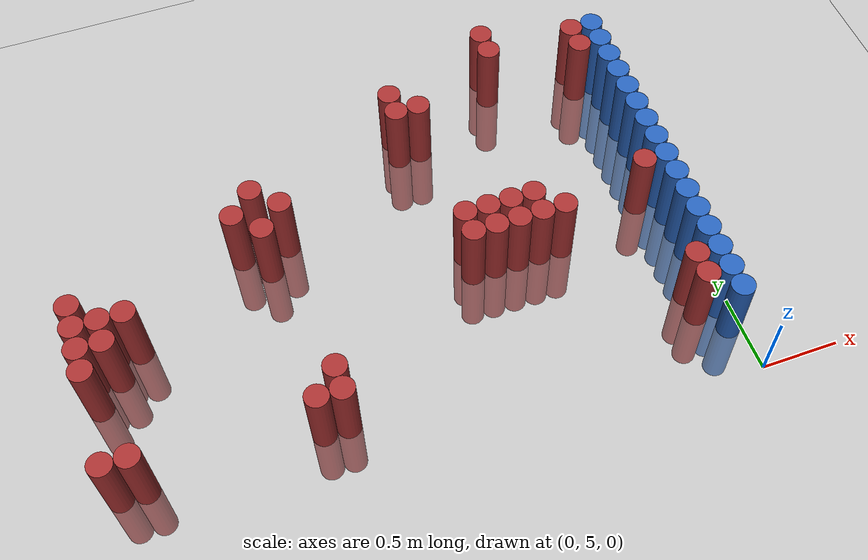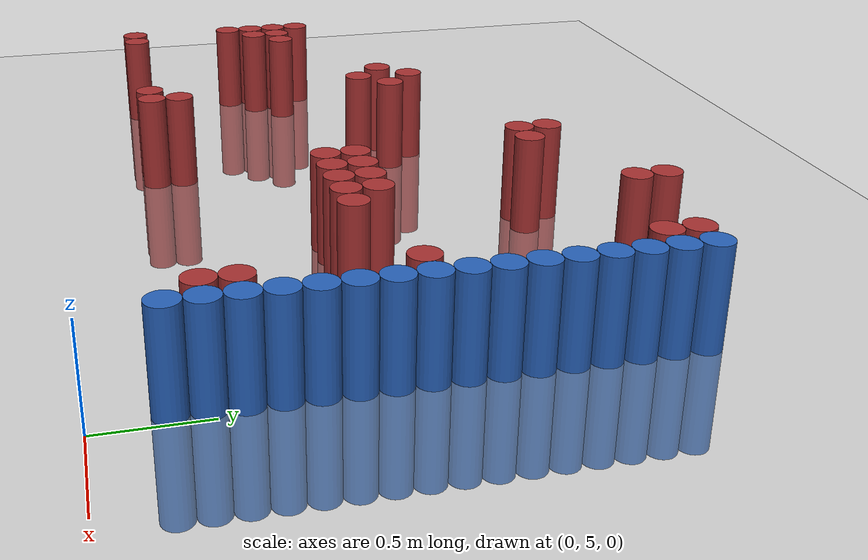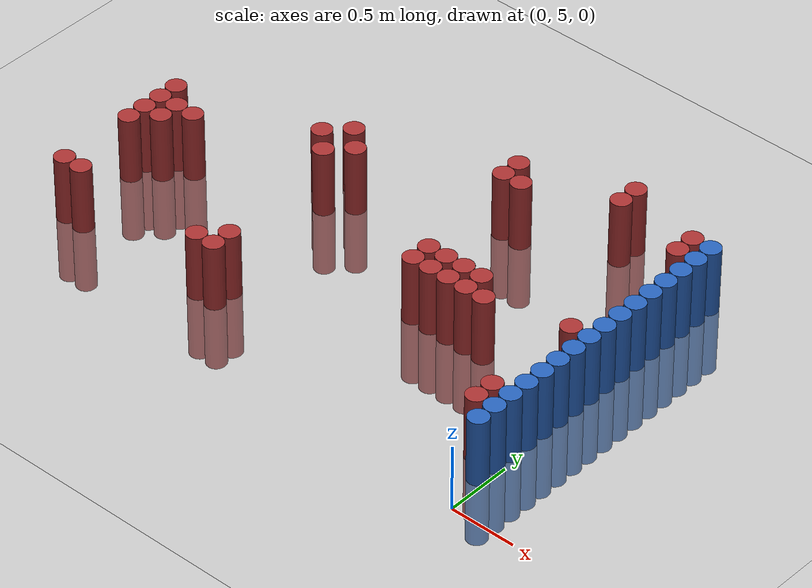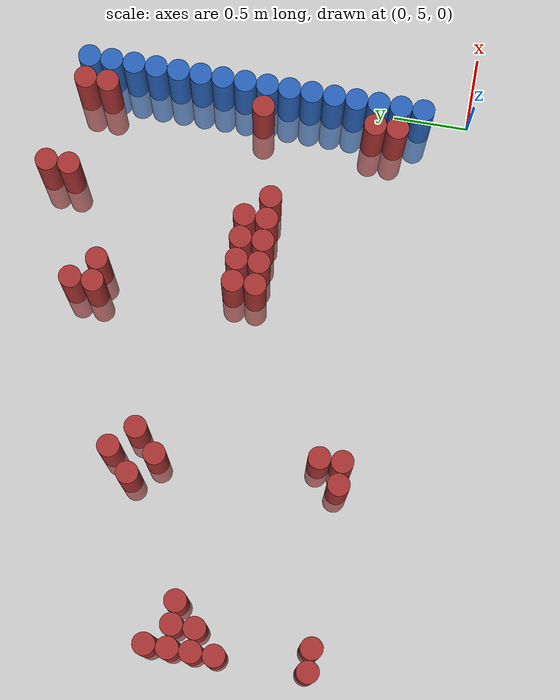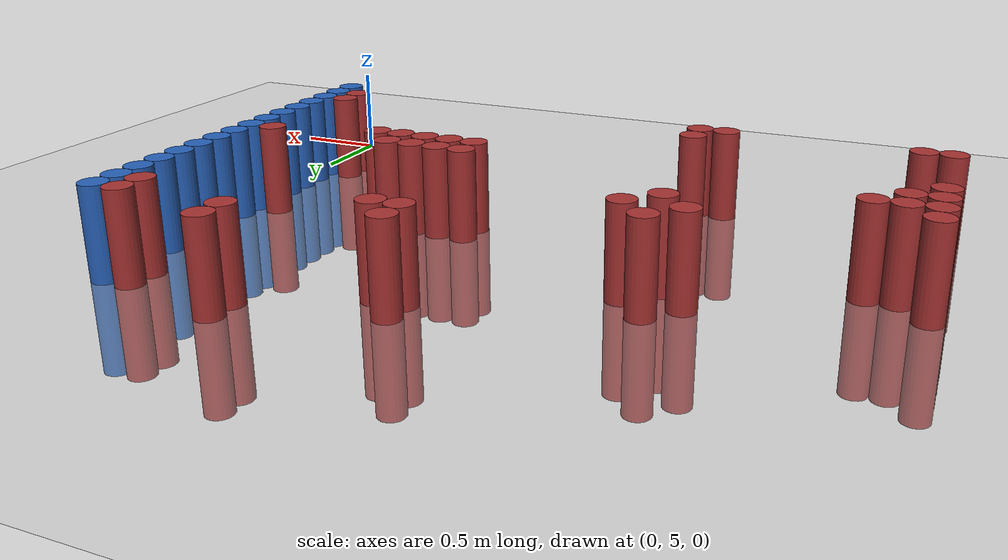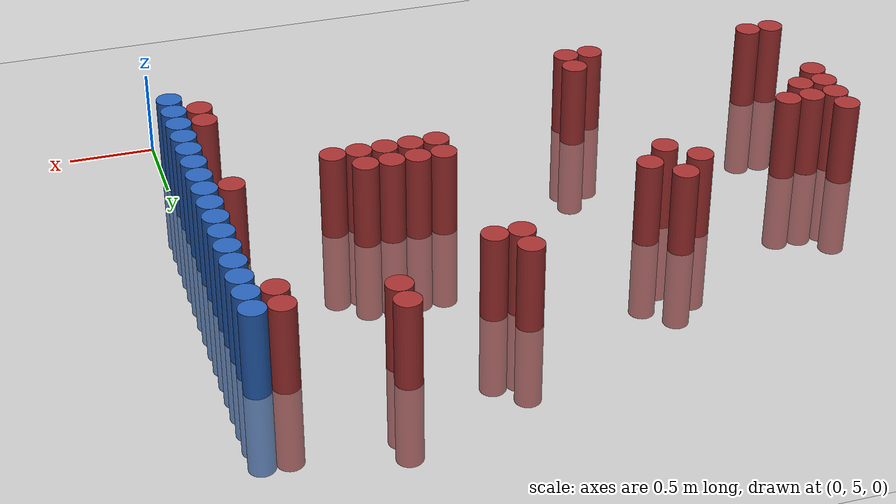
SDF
<sdf version="1.6">
 <world name="default">
  <model name="ground_plane">
   <static>1</static>
   <link name="link">
    <collision name="collision">
     <geometry><plane><normal>0 0 1</normal><size>100 100</size></plane></geometry>
     <surface><friction><ode><mu>100</mu><mu2>50</mu2></ode></friction></surface>
    </collision>
    <visual name="visual">
     <cast_shadows>0</cast_shadows>
     <geometry><plane><normal>0 0 1</normal><size>100 100</size></plane></geometry>
     <material>
      <script><uri>file://media/materials/scripts/gazebo.material</uri><name>Gazebo/Grey</name></script>
     </material>
    </visual>
   </link>
  </model>
  <model name="unit_cylinder_153">
   <static>1</static>
   <pose>-3.825000 5.475000 0.000000 0.000000 0.000000 0.000000</pose>
   <link name="link">
    <inertial>
     <mass>1</mass>
     <inertia><ixx>0.145833</ixx><ixy>0</ixy><ixz>0</ixz><iyy>0.145833</iyy><iyz>0</iyz><izz>0.125</izz></inertia>
    </inertial>
    <collision name="collision">
     <geometry><cylinder><radius>0.075000</radius><length>1</length></cylinder></geometry>
    </collision>
    <visual name="visual">
     <geometry><cylinder><radius>0.075000</radius><length>1</length></cylinder></geometry>
     <material>
      <ambient>0.648000 0.192000 0.192000 1</ambient>
      <diffuse>0.648000 0.192000 0.192000 1</diffuse>
     </material>
     <material>
      <script><name>Gazebo/Grey</name><uri>file://media/materials/scripts/gazebo.material</uri></script>
     </material>
    </visual>
   </link>
  </model>
  <model name="unit_cylinder_154">
   <static>1</static>
   <pose>-3.825000 6.075000 0.000000 0.000000 0.000000 0.000000</pose>
   <link name="link">
    <inertial>
     <mass>1</mass>
     <inertia><ixx>0.145833</ixx><ixy>0</ixy><ixz>0</ixz><iyy>0.145833</iyy><iyz>0</iyz><izz>0.125</izz></inertia>
    </inertial>
    <collision name="collision">
     <geometry><cylinder><radius>0.075000</radius><length>1</length></cylinder></geometry>
    </collision>
    <visual name="visual">
     <geometry><cylinder><radius>0.075000</radius><length>1</length></cylinder></geometry>
     <material>
      <ambient>0.648000 0.192000 0.192000 1</ambient>
      <diffuse>0.648000 0.192000 0.192000 1</diffuse>
     </material>
     <material>
      <script><name>Gazebo/Grey</name><uri>file://media/materials/scripts/gazebo.material</uri></script>
     </material>
    </visual>
   </link>
  </model>
  <model name="unit_cylinder_155">
   <static>1</static>
   <pose>-3.825000 6.225000 0.000000 0.000000 0.000000 0.000000</pose>
   <link name="link">
    <inertial>
     <mass>1</mass>
     <inertia><ixx>0.145833</ixx><ixy>0</ixy><ixz>0</ixz><iyy>0.145833</iyy><iyz>0</iyz><izz>0.125</izz></inertia>
    </inertial>
    <collision name="collision">
     <geometry><cylinder><radius>0.075000</radius><length>1</length></cylinder></geometry>
    </collision>
    <visual name="visual">
     <geometry><cylinder><radius>0.075000</radius><length>1</length></cylinder></geometry>
     <material>
      <ambient>0.648000 0.192000 0.192000 1</ambient>
      <diffuse>0.648000 0.192000 0.192000 1</diffuse>
     </material>
     <material>
      <script><name>Gazebo/Grey</name><uri>file://media/materials/scripts/gazebo.material</uri></script>
     </material>
    </visual>
   </link>
  </model>
  <model name="unit_cylinder_156">
   <static>1</static>
   <pose>-3.825000 6.375000 0.000000 0.000000 0.000000 0.000000</pose>
   <link name="link">
    <inertial>
     <mass>1</mass>
     <inertia><ixx>0.145833</ixx><ixy>0</ixy><ixz>0</ixz><iyy>0.145833</iyy><iyz>0</iyz><izz>0.125</izz></inertia>
    </inertial>
    <collision name="collision">
     <geometry><cylinder><radius>0.075000</radius><length>1</length></cylinder></geometry>
    </collision>
    <visual name="visual">
     <geometry><cylinder><radius>0.075000</radius><length>1</length></cylinder></geometry>
     <material>
      <ambient>0.648000 0.192000 0.192000 1</ambient>
      <diffuse>0.648000 0.192000 0.192000 1</diffuse>
     </material>
     <material>
      <script><name>Gazebo/Grey</name><uri>file://media/materials/scripts/gazebo.material</uri></script>
     </material>
    </visual>
   </link>
  </model>
  <model name="unit_cylinder_157">
   <static>1</static>
   <pose>-3.825000 6.525000 0.000000 0.000000 0.000000 0.000000</pose>
   <link name="link">
    <inertial>
     <mass>1</mass>
     <inertia><ixx>0.145833</ixx><ixy>0</ixy><ixz>0</ixz><iyy>0.145833</iyy><iyz>0</iyz><izz>0.125</izz></inertia>
    </inertial>
    <collision name="collision">
     <geometry><cylinder><radius>0.075000</radius><length>1</length></cylinder></geometry>
    </collision>
    <visual name="visual">
     <geometry><cylinder><radius>0.075000</radius><length>1</length></cylinder></geometry>
     <material>
      <ambient>0.648000 0.192000 0.192000 1</ambient>
      <diffuse>0.648000 0.192000 0.192000 1</diffuse>
     </material>
     <material>
      <script><name>Gazebo/Grey</name><uri>file://media/materials/scripts/gazebo.material</uri></script>
     </material>
    </visual>
   </link>
  </model>
  <model name="unit_cylinder_162">
   <static>1</static>
   <pose>-3.675000 5.475000 0.000000 0.000000 0.000000 0.000000</pose>
   <link name="link">
    <inertial>
     <mass>1</mass>
     <inertia><ixx>0.145833</ixx><ixy>0</ixy><ixz>0</ixz><iyy>0.145833</iyy><iyz>0</iyz><izz>0.125</izz></inertia>
    </inertial>
    <collision name="collision">
     <geometry><cylinder><radius>0.075000</radius><length>1</length></cylinder></geometry>
    </collision>
    <visual name="visual">
     <geometry><cylinder><radius>0.075000</radius><length>1</length></cylinder></geometry>
     <material>
      <ambient>0.648000 0.192000 0.192000 1</ambient>
      <diffuse>0.648000 0.192000 0.192000 1</diffuse>
     </material>
     <material>
      <script><name>Gazebo/Grey</name><uri>file://media/materials/scripts/gazebo.material</uri></script>
     </material>
    </visual>
   </link>
  </model>
  <model name="unit_cylinder_163">
   <static>1</static>
   <pose>-3.675000 6.225000 0.000000 0.000000 0.000000 0.000000</pose>
   <link name="link">
    <inertial>
     <mass>1</mass>
     <inertia><ixx>0.145833</ixx><ixy>0</ixy><ixz>0</ixz><iyy>0.145833</iyy><iyz>0</iyz><izz>0.125</izz></inertia>
    </inertial>
    <collision name="collision">
     <geometry><cylinder><radius>0.075000</radius><length>1</length></cylinder></geometry>
    </collision>
    <visual name="visual">
     <geometry><cylinder><radius>0.075000</radius><length>1</length></cylinder></geometry>
     <material>
      <ambient>0.648000 0.192000 0.192000 1</ambient>
      <diffuse>0.648000 0.192000 0.192000 1</diffuse>
     </material>
     <material>
      <script><name>Gazebo/Grey</name><uri>file://media/materials/scripts/gazebo.material</uri></script>
     </material>
    </visual>
   </link>
  </model>
  <model name="unit_cylinder_164">
   <static>1</static>
   <pose>-3.675000 6.375000 0.000000 0.000000 0.000000 0.000000</pose>
   <link name="link">
    <inertial>
     <mass>1</mass>
     <inertia><ixx>0.145833</ixx><ixy>0</ixy><ixz>0</ixz><iyy>0.145833</iyy><iyz>0</iyz><izz>0.125</izz></inertia>
    </inertial>
    <collision name="collision">
     <geometry><cylinder><radius>0.075000</radius><length>1</length></cylinder></geometry>
    </collision>
    <visual name="visual">
     <geometry><cylinder><radius>0.075000</radius><length>1</length></cylinder></geometry>
     <material>
      <ambient>0.648000 0.192000 0.192000 1</ambient>
      <diffuse>0.648000 0.192000 0.192000 1</diffuse>
     </material>
     <material>
      <script><name>Gazebo/Grey</name><uri>file://media/materials/scripts/gazebo.material</uri></script>
     </material>
    </visual>
   </link>
  </model>
  <model name="unit_cylinder_167">
   <static>1</static>
   <pose>-3.525000 6.375000 0.000000 0.000000 0.000000 0.000000</pose>
   <link name="link">
    <inertial>
     <mass>1</mass>
     <inertia><ixx>0.145833</ixx><ixy>0</ixy><ixz>0</ixz><iyy>0.145833</iyy><iyz>0</iyz><izz>0.125</izz></inertia>
    </inertial>
    <collision name="collision">
     <geometry><cylinder><radius>0.075000</radius><length>1</length></cylinder></geometry>
    </collision>
    <visual name="visual">
     <geometry><cylinder><radius>0.075000</radius><length>1</length></cylinder></geometry>
     <material>
      <ambient>0.648000 0.192000 0.192000 1</ambient>
      <diffuse>0.648000 0.192000 0.192000 1</diffuse>
     </material>
     <material>
      <script><name>Gazebo/Grey</name><uri>file://media/materials/scripts/gazebo.material</uri></script>
     </material>
    </visual>
   </link>
  </model>
  <model name="unit_cylinder_171">
   <static>1</static>
   <pose>-2.775000 6.825000 0.000000 0.000000 0.000000 0.000000</pose>
   <link name="link">
    <inertial>
     <mass>1</mass>
     <inertia><ixx>0.145833</ixx><ixy>0</ixy><ixz>0</ixz><iyy>0.145833</iyy><iyz>0</iyz><izz>0.125</izz></inertia>
    </inertial>
    <collision name="collision">
     <geometry><cylinder><radius>0.075000</radius><length>1</length></cylinder></geometry>
    </collision>
    <visual name="visual">
     <geometry><cylinder><radius>0.075000</radius><length>1</length></cylinder></geometry>
     <material>
      <ambient>0.648000 0.192000 0.192000 1</ambient>
      <diffuse>0.648000 0.192000 0.192000 1</diffuse>
     </material>
     <material>
      <script><name>Gazebo/Grey</name><uri>file://media/materials/scripts/gazebo.material</uri></script>
     </material>
    </visual>
   </link>
  </model>
  <model name="unit_cylinder_172">
   <static>1</static>
   <pose>-2.625000 5.475000 0.000000 0.000000 0.000000 0.000000</pose>
   <link name="link">
    <inertial>
     <mass>1</mass>
     <inertia><ixx>0.145833</ixx><ixy>0</ixy><ixz>0</ixz><iyy>0.145833</iyy><iyz>0</iyz><izz>0.125</izz></inertia>
    </inertial>
    <collision name="collision">
     <geometry><cylinder><radius>0.075000</radius><length>1</length></cylinder></geometry>
    </collision>
    <visual name="visual">
     <geometry><cylinder><radius>0.075000</radius><length>1</length></cylinder></geometry>
     <material>
      <ambient>0.648000 0.192000 0.192000 1</ambient>
      <diffuse>0.648000 0.192000 0.192000 1</diffuse>
     </material>
     <material>
      <script><name>Gazebo/Grey</name><uri>file://media/materials/scripts/gazebo.material</uri></script>
     </material>
    </visual>
   </link>
  </model>
  <model name="unit_cylinder_173">
   <static>1</static>
   <pose>-2.625000 6.675000 0.000000 0.000000 0.000000 0.000000</pose>
   <link name="link">
    <inertial>
     <mass>1</mass>
     <inertia><ixx>0.145833</ixx><ixy>0</ixy><ixz>0</ixz><iyy>0.145833</iyy><iyz>0</iyz><izz>0.125</izz></inertia>
    </inertial>
    <collision name="collision">
     <geometry><cylinder><radius>0.075000</radius><length>1</length></cylinder></geometry>
    </collision>
    <visual name="visual">
     <geometry><cylinder><radius>0.075000</radius><length>1</length></cylinder></geometry>
     <material>
      <ambient>0.648000 0.192000 0.192000 1</ambient>
      <diffuse>0.648000 0.192000 0.192000 1</diffuse>
     </material>
     <material>
      <script><name>Gazebo/Grey</name><uri>file://media/materials/scripts/gazebo.material</uri></script>
     </material>
    </visual>
   </link>
  </model>
  <model name="unit_cylinder_174">
   <static>1</static>
   <pose>-2.625000 6.975000 0.000000 0.000000 0.000000 0.000000</pose>
   <link name="link">
    <inertial>
     <mass>1</mass>
     <inertia><ixx>0.145833</ixx><ixy>0</ixy><ixz>0</ixz><iyy>0.145833</iyy><iyz>0</iyz><izz>0.125</izz></inertia>
    </inertial>
    <collision name="collision">
     <geometry><cylinder><radius>0.075000</radius><length>1</length></cylinder></geometry>
    </collision>
    <visual name="visual">
     <geometry><cylinder><radius>0.075000</radius><length>1</length></cylinder></geometry>
     <material>
      <ambient>0.648000 0.192000 0.192000 1</ambient>
      <diffuse>0.648000 0.192000 0.192000 1</diffuse>
     </material>
     <material>
      <script><name>Gazebo/Grey</name><uri>file://media/materials/scripts/gazebo.material</uri></script>
     </material>
    </visual>
   </link>
  </model>
  <model name="unit_cylinder_176">
   <static>1</static>
   <pose>-2.475000 5.475000 0.000000 0.000000 0.000000 0.000000</pose>
   <link name="link">
    <inertial>
     <mass>1</mass>
     <inertia><ixx>0.145833</ixx><ixy>0</ixy><ixz>0</ixz><iyy>0.145833</iyy><iyz>0</iyz><izz>0.125</izz></inertia>
    </inertial>
    <collision name="collision">
     <geometry><cylinder><radius>0.075000</radius><length>1</length></cylinder></geometry>
    </collision>
    <visual name="visual">
     <geometry><cylinder><radius>0.075000</radius><length>1</length></cylinder></geometry>
     <material>
      <ambient>0.648000 0.192000 0.192000 1</ambient>
      <diffuse>0.648000 0.192000 0.192000 1</diffuse>
     </material>
     <material>
      <script><name>Gazebo/Grey</name><uri>file://media/materials/scripts/gazebo.material</uri></script>
     </material>
    </visual>
   </link>
  </model>
  <model name="unit_cylinder_177">
   <static>1</static>
   <pose>-2.475000 5.625000 0.000000 0.000000 0.000000 0.000000</pose>
   <link name="link">
    <inertial>
     <mass>1</mass>
     <inertia><ixx>0.145833</ixx><ixy>0</ixy><ixz>0</ixz><iyy>0.145833</iyy><iyz>0</iyz><izz>0.125</izz></inertia>
    </inertial>
    <collision name="collision">
     <geometry><cylinder><radius>0.075000</radius><length>1</length></cylinder></geometry>
    </collision>
    <visual name="visual">
     <geometry><cylinder><radius>0.075000</radius><length>1</length></cylinder></geometry>
     <material>
      <ambient>0.648000 0.192000 0.192000 1</ambient>
      <diffuse>0.648000 0.192000 0.192000 1</diffuse>
     </material>
     <material>
      <script><name>Gazebo/Grey</name><uri>file://media/materials/scripts/gazebo.material</uri></script>
     </material>
    </visual>
   </link>
  </model>
  <model name="unit_cylinder_178">
   <static>1</static>
   <pose>-2.475000 6.825000 0.000000 0.000000 0.000000 0.000000</pose>
   <link name="link">
    <inertial>
     <mass>1</mass>
     <inertia><ixx>0.145833</ixx><ixy>0</ixy><ixz>0</ixz><iyy>0.145833</iyy><iyz>0</iyz><izz>0.125</izz></inertia>
    </inertial>
    <collision name="collision">
     <geometry><cylinder><radius>0.075000</radius><length>1</length></cylinder></geometry>
    </collision>
    <visual name="visual">
     <geometry><cylinder><radius>0.075000</radius><length>1</length></cylinder></geometry>
     <material>
      <ambient>0.648000 0.192000 0.192000 1</ambient>
      <diffuse>0.648000 0.192000 0.192000 1</diffuse>
     </material>
     <material>
      <script><name>Gazebo/Grey</name><uri>file://media/materials/scripts/gazebo.material</uri></script>
     </material>
    </visual>
   </link>
  </model>
  <model name="unit_cylinder_190">
   <static>1</static>
   <pose>-1.575000 7.275000 0.000000 0.000000 0.000000 0.000000</pose>
   <link name="link">
    <inertial>
     <mass>1</mass>
     <inertia><ixx>0.145833</ixx><ixy>0</ixy><ixz>0</ixz><iyy>0.145833</iyy><iyz>0</iyz><izz>0.125</izz></inertia>
    </inertial>
    <collision name="collision">
     <geometry><cylinder><radius>0.075000</radius><length>1</length></cylinder></geometry>
    </collision>
    <visual name="visual">
     <geometry><cylinder><radius>0.075000</radius><length>1</length></cylinder></geometry>
     <material>
      <ambient>0.648000 0.192000 0.192000 1</ambient>
      <diffuse>0.648000 0.192000 0.192000 1</diffuse>
     </material>
     <material>
      <script><name>Gazebo/Grey</name><uri>file://media/materials/scripts/gazebo.material</uri></script>
     </material>
    </visual>
   </link>
  </model>
  <model name="unit_cylinder_191">
   <static>1</static>
   <pose>-1.575000 7.425000 0.000000 0.000000 0.000000 0.000000</pose>
   <link name="link">
    <inertial>
     <mass>1</mass>
     <inertia><ixx>0.145833</ixx><ixy>0</ixy><ixz>0</ixz><iyy>0.145833</iyy><iyz>0</iyz><izz>0.125</izz></inertia>
    </inertial>
    <collision name="collision">
     <geometry><cylinder><radius>0.075000</radius><length>1</length></cylinder></geometry>
    </collision>
    <visual name="visual">
     <geometry><cylinder><radius>0.075000</radius><length>1</length></cylinder></geometry>
     <material>
      <ambient>0.648000 0.192000 0.192000 1</ambient>
      <diffuse>0.648000 0.192000 0.192000 1</diffuse>
     </material>
     <material>
      <script><name>Gazebo/Grey</name><uri>file://media/materials/scripts/gazebo.material</uri></script>
     </material>
    </visual>
   </link>
  </model>
  <model name="unit_cylinder_193">
   <static>1</static>
   <pose>-1.425000 6.225000 0.000000 0.000000 0.000000 0.000000</pose>
   <link name="link">
    <inertial>
     <mass>1</mass>
     <inertia><ixx>0.145833</ixx><ixy>0</ixy><ixz>0</ixz><iyy>0.145833</iyy><iyz>0</iyz><izz>0.125</izz></inertia>
    </inertial>
    <collision name="collision">
     <geometry><cylinder><radius>0.075000</radius><length>1</length></cylinder></geometry>
    </collision>
    <visual name="visual">
     <geometry><cylinder><radius>0.075000</radius><length>1</length></cylinder></geometry>
     <material>
      <ambient>0.648000 0.192000 0.192000 1</ambient>
      <diffuse>0.648000 0.192000 0.192000 1</diffuse>
     </material>
     <material>
      <script><name>Gazebo/Grey</name><uri>file://media/materials/scripts/gazebo.material</uri></script>
     </material>
    </visual>
   </link>
  </model>
  <model name="unit_cylinder_194">
   <static>1</static>
   <pose>-1.425000 6.375000 0.000000 0.000000 0.000000 0.000000</pose>
   <link name="link">
    <inertial>
     <mass>1</mass>
     <inertia><ixx>0.145833</ixx><ixy>0</ixy><ixz>0</ixz><iyy>0.145833</iyy><iyz>0</iyz><izz>0.125</izz></inertia>
    </inertial>
    <collision name="collision">
     <geometry><cylinder><radius>0.075000</radius><length>1</length></cylinder></geometry>
    </collision>
    <visual name="visual">
     <geometry><cylinder><radius>0.075000</radius><length>1</length></cylinder></geometry>
     <material>
      <ambient>0.648000 0.192000 0.192000 1</ambient>
      <diffuse>0.648000 0.192000 0.192000 1</diffuse>
     </material>
     <material>
      <script><name>Gazebo/Grey</name><uri>file://media/materials/scripts/gazebo.material</uri></script>
     </material>
    </visual>
   </link>
  </model>
  <model name="unit_cylinder_195">
   <static>1</static>
   <pose>-1.425000 7.275000 0.000000 0.000000 0.000000 0.000000</pose>
   <link name="link">
    <inertial>
     <mass>1</mass>
     <inertia><ixx>0.145833</ixx><ixy>0</ixy><ixz>0</ixz><iyy>0.145833</iyy><iyz>0</iyz><izz>0.125</izz></inertia>
    </inertial>
    <collision name="collision">
     <geometry><cylinder><radius>0.075000</radius><length>1</length></cylinder></geometry>
    </collision>
    <visual name="visual">
     <geometry><cylinder><radius>0.075000</radius><length>1</length></cylinder></geometry>
     <material>
      <ambient>0.648000 0.192000 0.192000 1</ambient>
      <diffuse>0.648000 0.192000 0.192000 1</diffuse>
     </material>
     <material>
      <script><name>Gazebo/Grey</name><uri>file://media/materials/scripts/gazebo.material</uri></script>
     </material>
    </visual>
   </link>
  </model>
  <model name="unit_cylinder_197">
   <static>1</static>
   <pose>-1.275000 6.225000 0.000000 0.000000 0.000000 0.000000</pose>
   <link name="link">
    <inertial>
     <mass>1</mass>
     <inertia><ixx>0.145833</ixx><ixy>0</ixy><ixz>0</ixz><iyy>0.145833</iyy><iyz>0</iyz><izz>0.125</izz></inertia>
    </inertial>
    <collision name="collision">
     <geometry><cylinder><radius>0.075000</radius><length>1</length></cylinder></geometry>
    </collision>
    <visual name="visual">
     <geometry><cylinder><radius>0.075000</radius><length>1</length></cylinder></geometry>
     <material>
      <ambient>0.648000 0.192000 0.192000 1</ambient>
      <diffuse>0.648000 0.192000 0.192000 1</diffuse>
     </material>
     <material>
      <script><name>Gazebo/Grey</name><uri>file://media/materials/scripts/gazebo.material</uri></script>
     </material>
    </visual>
   </link>
  </model>
  <model name="unit_cylinder_198">
   <static>1</static>
   <pose>-1.275000 6.375000 0.000000 0.000000 0.000000 0.000000</pose>
   <link name="link">
    <inertial>
     <mass>1</mass>
     <inertia><ixx>0.145833</ixx><ixy>0</ixy><ixz>0</ixz><iyy>0.145833</iyy><iyz>0</iyz><izz>0.125</izz></inertia>
    </inertial>
    <collision name="collision">
     <geometry><cylinder><radius>0.075000</radius><length>1</length></cylinder></geometry>
    </collision>
    <visual name="visual">
     <geometry><cylinder><radius>0.075000</radius><length>1</length></cylinder></geometry>
     <material>
      <ambient>0.648000 0.192000 0.192000 1</ambient>
      <diffuse>0.648000 0.192000 0.192000 1</diffuse>
     </material>
     <material>
      <script><name>Gazebo/Grey</name><uri>file://media/materials/scripts/gazebo.material</uri></script>
     </material>
    </visual>
   </link>
  </model>
  <model name="unit_cylinder_201">
   <static>1</static>
   <pose>-1.125000 6.225000 0.000000 0.000000 0.000000 0.000000</pose>
   <link name="link">
    <inertial>
     <mass>1</mass>
     <inertia><ixx>0.145833</ixx><ixy>0</ixy><ixz>0</ixz><iyy>0.145833</iyy><iyz>0</iyz><izz>0.125</izz></inertia>
    </inertial>
    <collision name="collision">
     <geometry><cylinder><radius>0.075000</radius><length>1</length></cylinder></geometry>
    </collision>
    <visual name="visual">
     <geometry><cylinder><radius>0.075000</radius><length>1</length></cylinder></geometry>
     <material>
      <ambient>0.648000 0.192000 0.192000 1</ambient>
      <diffuse>0.648000 0.192000 0.192000 1</diffuse>
     </material>
     <material>
      <script><name>Gazebo/Grey</name><uri>file://media/materials/scripts/gazebo.material</uri></script>
     </material>
    </visual>
   </link>
  </model>
  <model name="unit_cylinder_202">
   <static>1</static>
   <pose>-1.125000 6.375000 0.000000 0.000000 0.000000 0.000000</pose>
   <link name="link">
    <inertial>
     <mass>1</mass>
     <inertia><ixx>0.145833</ixx><ixy>0</ixy><ixz>0</ixz><iyy>0.145833</iyy><iyz>0</iyz><izz>0.125</izz></inertia>
    </inertial>
    <collision name="collision">
     <geometry><cylinder><radius>0.075000</radius><length>1</length></cylinder></geometry>
    </collision>
    <visual name="visual">
     <geometry><cylinder><radius>0.075000</radius><length>1</length></cylinder></geometry>
     <material>
      <ambient>0.648000 0.192000 0.192000 1</ambient>
      <diffuse>0.648000 0.192000 0.192000 1</diffuse>
     </material>
     <material>
      <script><name>Gazebo/Grey</name><uri>file://media/materials/scripts/gazebo.material</uri></script>
     </material>
    </visual>
   </link>
  </model>
  <model name="unit_cylinder_203">
   <static>1</static>
   <pose>-0.975000 6.225000 0.000000 0.000000 0.000000 0.000000</pose>
   <link name="link">
    <inertial>
     <mass>1</mass>
     <inertia><ixx>0.145833</ixx><ixy>0</ixy><ixz>0</ixz><iyy>0.145833</iyy><iyz>0</iyz><izz>0.125</izz></inertia>
    </inertial>
    <collision name="collision">
     <geometry><cylinder><radius>0.075000</radius><length>1</length></cylinder></geometry>
    </collision>
    <visual name="visual">
     <geometry><cylinder><radius>0.075000</radius><length>1</length></cylinder></geometry>
     <material>
      <ambient>0.648000 0.192000 0.192000 1</ambient>
      <diffuse>0.648000 0.192000 0.192000 1</diffuse>
     </material>
     <material>
      <script><name>Gazebo/Grey</name><uri>file://media/materials/scripts/gazebo.material</uri></script>
     </material>
    </visual>
   </link>
  </model>
  <model name="unit_cylinder_204">
   <static>1</static>
   <pose>-0.975000 6.375000 0.000000 0.000000 0.000000 0.000000</pose>
   <link name="link">
    <inertial>
     <mass>1</mass>
     <inertia><ixx>0.145833</ixx><ixy>0</ixy><ixz>0</ixz><iyy>0.145833</iyy><iyz>0</iyz><izz>0.125</izz></inertia>
    </inertial>
    <collision name="collision">
     <geometry><cylinder><radius>0.075000</radius><length>1</length></cylinder></geometry>
    </collision>
    <visual name="visual">
     <geometry><cylinder><radius>0.075000</radius><length>1</length></cylinder></geometry>
     <material>
      <ambient>0.648000 0.192000 0.192000 1</ambient>
      <diffuse>0.648000 0.192000 0.192000 1</diffuse>
     </material>
     <material>
      <script><name>Gazebo/Grey</name><uri>file://media/materials/scripts/gazebo.material</uri></script>
     </material>
    </visual>
   </link>
  </model>
  <model name="unit_cylinder_205">
   <static>1</static>
   <pose>-0.825000 6.225000 0.000000 0.000000 0.000000 0.000000</pose>
   <link name="link">
    <inertial>
     <mass>1</mass>
     <inertia><ixx>0.145833</ixx><ixy>0</ixy><ixz>0</ixz><iyy>0.145833</iyy><iyz>0</iyz><izz>0.125</izz></inertia>
    </inertial>
    <collision name="collision">
     <geometry><cylinder><radius>0.075000</radius><length>1</length></cylinder></geometry>
    </collision>
    <visual name="visual">
     <geometry><cylinder><radius>0.075000</radius><length>1</length></cylinder></geometry>
     <material>
      <ambient>0.648000 0.192000 0.192000 1</ambient>
      <diffuse>0.648000 0.192000 0.192000 1</diffuse>
     </material>
     <material>
      <script><name>Gazebo/Grey</name><uri>file://media/materials/scripts/gazebo.material</uri></script>
     </material>
    </visual>
   </link>
  </model>
  <model name="unit_cylinder_206">
   <static>1</static>
   <pose>-0.825000 7.575000 0.000000 0.000000 0.000000 0.000000</pose>
   <link name="link">
    <inertial>
     <mass>1</mass>
     <inertia><ixx>0.145833</ixx><ixy>0</ixy><ixz>0</ixz><iyy>0.145833</iyy><iyz>0</iyz><izz>0.125</izz></inertia>
    </inertial>
    <collision name="collision">
     <geometry><cylinder><radius>0.075000</radius><length>1</length></cylinder></geometry>
    </collision>
    <visual name="visual">
     <geometry><cylinder><radius>0.075000</radius><length>1</length></cylinder></geometry>
     <material>
      <ambient>0.648000 0.192000 0.192000 1</ambient>
      <diffuse>0.648000 0.192000 0.192000 1</diffuse>
     </material>
     <material>
      <script><name>Gazebo/Grey</name><uri>file://media/materials/scripts/gazebo.material</uri></script>
     </material>
    </visual>
   </link>
  </model>
  <model name="unit_cylinder_207">
   <static>1</static>
   <pose>-0.825000 7.725000 0.000000 0.000000 0.000000 0.000000</pose>
   <link name="link">
    <inertial>
     <mass>1</mass>
     <inertia><ixx>0.145833</ixx><ixy>0</ixy><ixz>0</ixz><iyy>0.145833</iyy><iyz>0</iyz><izz>0.125</izz></inertia>
    </inertial>
    <collision name="collision">
     <geometry><cylinder><radius>0.075000</radius><length>1</length></cylinder></geometry>
    </collision>
    <visual name="visual">
     <geometry><cylinder><radius>0.075000</radius><length>1</length></cylinder></geometry>
     <material>
      <ambient>0.648000 0.192000 0.192000 1</ambient>
      <diffuse>0.648000 0.192000 0.192000 1</diffuse>
     </material>
     <material>
      <script><name>Gazebo/Grey</name><uri>file://media/materials/scripts/gazebo.material</uri></script>
     </material>
    </visual>
   </link>
  </model>
  <model name="unit_cylinder_217">
   <static>1</static>
   <pose>-0.225000 5.475000 0.000000 0.000000 0.000000 0.000000</pose>
   <link name="link">
    <inertial>
     <mass>1</mass>
     <inertia><ixx>0.145833</ixx><ixy>0</ixy><ixz>0</ixz><iyy>0.145833</iyy><iyz>0</iyz><izz>0.125</izz></inertia>
    </inertial>
    <collision name="collision">
     <geometry><cylinder><radius>0.075000</radius><length>1</length></cylinder></geometry>
    </collision>
    <visual name="visual">
     <geometry><cylinder><radius>0.075000</radius><length>1</length></cylinder></geometry>
     <material>
      <ambient>0.648000 0.192000 0.192000 1</ambient>
      <diffuse>0.648000 0.192000 0.192000 1</diffuse>
     </material>
     <material>
      <script><name>Gazebo/Grey</name><uri>file://media/materials/scripts/gazebo.material</uri></script>
     </material>
    </visual>
   </link>
  </model>
  <model name="unit_cylinder_218">
   <static>1</static>
   <pose>-0.225000 5.625000 0.000000 0.000000 0.000000 0.000000</pose>
   <link name="link">
    <inertial>
     <mass>1</mass>
     <inertia><ixx>0.145833</ixx><ixy>0</ixy><ixz>0</ixz><iyy>0.145833</iyy><iyz>0</iyz><izz>0.125</izz></inertia>
    </inertial>
    <collision name="collision">
     <geometry><cylinder><radius>0.075000</radius><length>1</length></cylinder></geometry>
    </collision>
    <visual name="visual">
     <geometry><cylinder><radius>0.075000</radius><length>1</length></cylinder></geometry>
     <material>
      <ambient>0.648000 0.192000 0.192000 1</ambient>
      <diffuse>0.648000 0.192000 0.192000 1</diffuse>
     </material>
     <material>
      <script><name>Gazebo/Grey</name><uri>file://media/materials/scripts/gazebo.material</uri></script>
     </material>
    </visual>
   </link>
  </model>
  <model name="unit_cylinder_219">
   <static>1</static>
   <pose>-0.225000 6.375000 0.000000 0.000000 0.000000 0.000000</pose>
   <link name="link">
    <inertial>
     <mass>1</mass>
     <inertia><ixx>0.145833</ixx><ixy>0</ixy><ixz>0</ixz><iyy>0.145833</iyy><iyz>0</iyz><izz>0.125</izz></inertia>
    </inertial>
    <collision name="collision">
     <geometry><cylinder><radius>0.075000</radius><length>1</length></cylinder></geometry>
    </collision>
    <visual name="visual">
     <geometry><cylinder><radius>0.075000</radius><length>1</length></cylinder></geometry>
     <material>
      <ambient>0.648000 0.192000 0.192000 1</ambient>
      <diffuse>0.648000 0.192000 0.192000 1</diffuse>
     </material>
     <material>
      <script><name>Gazebo/Grey</name><uri>file://media/materials/scripts/gazebo.material</uri></script>
     </material>
    </visual>
   </link>
  </model>
  <model name="unit_cylinder_220">
   <static>1</static>
   <pose>-0.225000 7.425000 0.000000 0.000000 0.000000 0.000000</pose>
   <link name="link">
    <inertial>
     <mass>1</mass>
     <inertia><ixx>0.145833</ixx><ixy>0</ixy><ixz>0</ixz><iyy>0.145833</iyy><iyz>0</iyz><izz>0.125</izz></inertia>
    </inertial>
    <collision name="collision">
     <geometry><cylinder><radius>0.075000</radius><length>1</length></cylinder></geometry>
    </collision>
    <visual name="visual">
     <geometry><cylinder><radius>0.075000</radius><length>1</length></cylinder></geometry>
     <material>
      <ambient>0.648000 0.192000 0.192000 1</ambient>
      <diffuse>0.648000 0.192000 0.192000 1</diffuse>
     </material>
     <material>
      <script><name>Gazebo/Grey</name><uri>file://media/materials/scripts/gazebo.material</uri></script>
     </material>
    </visual>
   </link>
  </model>
  <model name="unit_cylinder_221">
   <static>1</static>
   <pose>-0.225000 7.575000 0.000000 0.000000 0.000000 0.000000</pose>
   <link name="link">
    <inertial>
     <mass>1</mass>
     <inertia><ixx>0.145833</ixx><ixy>0</ixy><ixz>0</ixz><iyy>0.145833</iyy><iyz>0</iyz><izz>0.125</izz></inertia>
    </inertial>
    <collision name="collision">
     <geometry><cylinder><radius>0.075000</radius><length>1</length></cylinder></geometry>
    </collision>
    <visual name="visual">
     <geometry><cylinder><radius>0.075000</radius><length>1</length></cylinder></geometry>
     <material>
      <ambient>0.648000 0.192000 0.192000 1</ambient>
      <diffuse>0.648000 0.192000 0.192000 1</diffuse>
     </material>
     <material>
      <script><name>Gazebo/Grey</name><uri>file://media/materials/scripts/gazebo.material</uri></script>
     </material>
    </visual>
   </link>
  </model>
  <model name="unit_cylinder_227">
   <static>1</static>
   <pose>-0.075000 5.325000 0.000000 0.000000 0.000000 0.000000</pose>
   <link name="link">
    <inertial>
     <mass>1</mass>
     <inertia><ixx>0.145833</ixx><ixy>0</ixy><ixz>0</ixz><iyy>0.145833</iyy><iyz>0</iyz><izz>0.125</izz></inertia>
    </inertial>
    <collision name="collision">
     <geometry><cylinder><radius>0.075000</radius><length>1</length></cylinder></geometry>
    </collision>
    <visual name="visual">
     <geometry><cylinder><radius>0.075000</radius><length>1</length></cylinder></geometry>
     <material>
      <ambient>0.152000 0.379000 0.720000 1</ambient>
      <diffuse>0.152000 0.379000 0.720000 1</diffuse>
     </material>
     <material>
      <script><name>Gazebo/Grey</name><uri>file://media/materials/scripts/gazebo.material</uri></script>
     </material>
    </visual>
   </link>
  </model>
  <model name="unit_cylinder_228">
   <static>1</static>
   <pose>-0.075000 5.475000 0.000000 0.000000 0.000000 0.000000</pose>
   <link name="link">
    <inertial>
     <mass>1</mass>
     <inertia><ixx>0.145833</ixx><ixy>0</ixy><ixz>0</ixz><iyy>0.145833</iyy><iyz>0</iyz><izz>0.125</izz></inertia>
    </inertial>
    <collision name="collision">
     <geometry><cylinder><radius>0.075000</radius><length>1</length></cylinder></geometry>
    </collision>
    <visual name="visual">
     <geometry><cylinder><radius>0.075000</radius><length>1</length></cylinder></geometry>
     <material>
      <ambient>0.152000 0.379000 0.720000 1</ambient>
      <diffuse>0.152000 0.379000 0.720000 1</diffuse>
     </material>
     <material>
      <script><name>Gazebo/Grey</name><uri>file://media/materials/scripts/gazebo.material</uri></script>
     </material>
    </visual>
   </link>
  </model>
  <model name="unit_cylinder_229">
   <static>1</static>
   <pose>-0.075000 5.625000 0.000000 0.000000 0.000000 0.000000</pose>
   <link name="link">
    <inertial>
     <mass>1</mass>
     <inertia><ixx>0.145833</ixx><ixy>0</ixy><ixz>0</ixz><iyy>0.145833</iyy><iyz>0</iyz><izz>0.125</izz></inertia>
    </inertial>
    <collision name="collision">
     <geometry><cylinder><radius>0.075000</radius><length>1</length></cylinder></geometry>
    </collision>
    <visual name="visual">
     <geometry><cylinder><radius>0.075000</radius><length>1</length></cylinder></geometry>
     <material>
      <ambient>0.152000 0.379000 0.720000 1</ambient>
      <diffuse>0.152000 0.379000 0.720000 1</diffuse>
     </material>
     <material>
      <script><name>Gazebo/Grey</name><uri>file://media/materials/scripts/gazebo.material</uri></script>
     </material>
    </visual>
   </link>
  </model>
  <model name="unit_cylinder_230">
   <static>1</static>
   <pose>-0.075000 5.775000 0.000000 0.000000 0.000000 0.000000</pose>
   <link name="link">
    <inertial>
     <mass>1</mass>
     <inertia><ixx>0.145833</ixx><ixy>0</ixy><ixz>0</ixz><iyy>0.145833</iyy><iyz>0</iyz><izz>0.125</izz></inertia>
    </inertial>
    <collision name="collision">
     <geometry><cylinder><radius>0.075000</radius><length>1</length></cylinder></geometry>
    </collision>
    <visual name="visual">
     <geometry><cylinder><radius>0.075000</radius><length>1</length></cylinder></geometry>
     <material>
      <ambient>0.152000 0.379000 0.720000 1</ambient>
      <diffuse>0.152000 0.379000 0.720000 1</diffuse>
     </material>
     <material>
      <script><name>Gazebo/Grey</name><uri>file://media/materials/scripts/gazebo.material</uri></script>
     </material>
    </visual>
   </link>
  </model>
  <model name="unit_cylinder_231">
   <static>1</static>
   <pose>-0.075000 5.925000 0.000000 0.000000 0.000000 0.000000</pose>
   <link name="link">
    <inertial>
     <mass>1</mass>
     <inertia><ixx>0.145833</ixx><ixy>0</ixy><ixz>0</ixz><iyy>0.145833</iyy><iyz>0</iyz><izz>0.125</izz></inertia>
    </inertial>
    <collision name="collision">
     <geometry><cylinder><radius>0.075000</radius><length>1</length></cylinder></geometry>
    </collision>
    <visual name="visual">
     <geometry><cylinder><radius>0.075000</radius><length>1</length></cylinder></geometry>
     <material>
      <ambient>0.152000 0.379000 0.720000 1</ambient>
      <diffuse>0.152000 0.379000 0.720000 1</diffuse>
     </material>
     <material>
      <script><name>Gazebo/Grey</name><uri>file://media/materials/scripts/gazebo.material</uri></script>
     </material>
    </visual>
   </link>
  </model>
  <model name="unit_cylinder_232">
   <static>1</static>
   <pose>-0.075000 6.075000 0.000000 0.000000 0.000000 0.000000</pose>
   <link name="link">
    <inertial>
     <mass>1</mass>
     <inertia><ixx>0.145833</ixx><ixy>0</ixy><ixz>0</ixz><iyy>0.145833</iyy><iyz>0</iyz><izz>0.125</izz></inertia>
    </inertial>
    <collision name="collision">
     <geometry><cylinder><radius>0.075000</radius><length>1</length></cylinder></geometry>
    </collision>
    <visual name="visual">
     <geometry><cylinder><radius>0.075000</radius><length>1</length></cylinder></geometry>
     <material>
      <ambient>0.152000 0.379000 0.720000 1</ambient>
      <diffuse>0.152000 0.379000 0.720000 1</diffuse>
     </material>
     <material>
      <script><name>Gazebo/Grey</name><uri>file://media/materials/scripts/gazebo.material</uri></script>
     </material>
    </visual>
   </link>
  </model>
  <model name="unit_cylinder_233">
   <static>1</static>
   <pose>-0.075000 6.225000 0.000000 0.000000 0.000000 0.000000</pose>
   <link name="link">
    <inertial>
     <mass>1</mass>
     <inertia><ixx>0.145833</ixx><ixy>0</ixy><ixz>0</ixz><iyy>0.145833</iyy><iyz>0</iyz><izz>0.125</izz></inertia>
    </inertial>
    <collision name="collision">
     <geometry><cylinder><radius>0.075000</radius><length>1</length></cylinder></geometry>
    </collision>
    <visual name="visual">
     <geometry><cylinder><radius>0.075000</radius><length>1</length></cylinder></geometry>
     <material>
      <ambient>0.152000 0.379000 0.720000 1</ambient>
      <diffuse>0.152000 0.379000 0.720000 1</diffuse>
     </material>
     <material>
      <script><name>Gazebo/Grey</name><uri>file://media/materials/scripts/gazebo.material</uri></script>
     </material>
    </visual>
   </link>
  </model>
  <model name="unit_cylinder_234">
   <static>1</static>
   <pose>-0.075000 6.375000 0.000000 0.000000 0.000000 0.000000</pose>
   <link name="link">
    <inertial>
     <mass>1</mass>
     <inertia><ixx>0.145833</ixx><ixy>0</ixy><ixz>0</ixz><iyy>0.145833</iyy><iyz>0</iyz><izz>0.125</izz></inertia>
    </inertial>
    <collision name="collision">
     <geometry><cylinder><radius>0.075000</radius><length>1</length></cylinder></geometry>
    </collision>
    <visual name="visual">
     <geometry><cylinder><radius>0.075000</radius><length>1</length></cylinder></geometry>
     <material>
      <ambient>0.152000 0.379000 0.720000 1</ambient>
      <diffuse>0.152000 0.379000 0.720000 1</diffuse>
     </material>
     <material>
      <script><name>Gazebo/Grey</name><uri>file://media/materials/scripts/gazebo.material</uri></script>
     </material>
    </visual>
   </link>
  </model>
  <model name="unit_cylinder_235">
   <static>1</static>
   <pose>-0.075000 6.525000 0.000000 0.000000 0.000000 0.000000</pose>
   <link name="link">
    <inertial>
     <mass>1</mass>
     <inertia><ixx>0.145833</ixx><ixy>0</ixy><ixz>0</ixz><iyy>0.145833</iyy><iyz>0</iyz><izz>0.125</izz></inertia>
    </inertial>
    <collision name="collision">
     <geometry><cylinder><radius>0.075000</radius><length>1</length></cylinder></geometry>
    </collision>
    <visual name="visual">
     <geometry><cylinder><radius>0.075000</radius><length>1</length></cylinder></geometry>
     <material>
      <ambient>0.152000 0.379000 0.720000 1</ambient>
      <diffuse>0.152000 0.379000 0.720000 1</diffuse>
     </material>
     <material>
      <script><name>Gazebo/Grey</name><uri>file://media/materials/scripts/gazebo.material</uri></script>
     </material>
    </visual>
   </link>
  </model>
  <model name="unit_cylinder_236">
   <static>1</static>
   <pose>-0.075000 6.675000 0.000000 0.000000 0.000000 0.000000</pose>
   <link name="link">
    <inertial>
     <mass>1</mass>
     <inertia><ixx>0.145833</ixx><ixy>0</ixy><ixz>0</ixz><iyy>0.145833</iyy><iyz>0</iyz><izz>0.125</izz></inertia>
    </inertial>
    <collision name="collision">
     <geometry><cylinder><radius>0.075000</radius><length>1</length></cylinder></geometry>
    </collision>
    <visual name="visual">
     <geometry><cylinder><radius>0.075000</radius><length>1</length></cylinder></geometry>
     <material>
      <ambient>0.152000 0.379000 0.720000 1</ambient>
      <diffuse>0.152000 0.379000 0.720000 1</diffuse>
     </material>
     <material>
      <script><name>Gazebo/Grey</name><uri>file://media/materials/scripts/gazebo.material</uri></script>
     </material>
    </visual>
   </link>
  </model>
  <model name="unit_cylinder_237">
   <static>1</static>
   <pose>-0.075000 6.825000 0.000000 0.000000 0.000000 0.000000</pose>
   <link name="link">
    <inertial>
     <mass>1</mass>
     <inertia><ixx>0.145833</ixx><ixy>0</ixy><ixz>0</ixz><iyy>0.145833</iyy><iyz>0</iyz><izz>0.125</izz></inertia>
    </inertial>
    <collision name="collision">
     <geometry><cylinder><radius>0.075000</radius><length>1</length></cylinder></geometry>
    </collision>
    <visual name="visual">
     <geometry><cylinder><radius>0.075000</radius><length>1</length></cylinder></geometry>
     <material>
      <ambient>0.152000 0.379000 0.720000 1</ambient>
      <diffuse>0.152000 0.379000 0.720000 1</diffuse>
     </material>
     <material>
      <script><name>Gazebo/Grey</name><uri>file://media/materials/scripts/gazebo.material</uri></script>
     </material>
    </visual>
   </link>
  </model>
  <model name="unit_cylinder_238">
   <static>1</static>
   <pose>-0.075000 6.975000 0.000000 0.000000 0.000000 0.000000</pose>
   <link name="link">
    <inertial>
     <mass>1</mass>
     <inertia><ixx>0.145833</ixx><ixy>0</ixy><ixz>0</ixz><iyy>0.145833</iyy><iyz>0</iyz><izz>0.125</izz></inertia>
    </inertial>
    <collision name="collision">
     <geometry><cylinder><radius>0.075000</radius><length>1</length></cylinder></geometry>
    </collision>
    <visual name="visual">
     <geometry><cylinder><radius>0.075000</radius><length>1</length></cylinder></geometry>
     <material>
      <ambient>0.152000 0.379000 0.720000 1</ambient>
      <diffuse>0.152000 0.379000 0.720000 1</diffuse>
     </material>
     <material>
      <script><name>Gazebo/Grey</name><uri>file://media/materials/scripts/gazebo.material</uri></script>
     </material>
    </visual>
   </link>
  </model>
  <model name="unit_cylinder_239">
   <static>1</static>
   <pose>-0.075000 7.125000 0.000000 0.000000 0.000000 0.000000</pose>
   <link name="link">
    <inertial>
     <mass>1</mass>
     <inertia><ixx>0.145833</ixx><ixy>0</ixy><ixz>0</ixz><iyy>0.145833</iyy><iyz>0</iyz><izz>0.125</izz></inertia>
    </inertial>
    <collision name="collision">
     <geometry><cylinder><radius>0.075000</radius><length>1</length></cylinder></geometry>
    </collision>
    <visual name="visual">
     <geometry><cylinder><radius>0.075000</radius><length>1</length></cylinder></geometry>
     <material>
      <ambient>0.152000 0.379000 0.720000 1</ambient>
      <diffuse>0.152000 0.379000 0.720000 1</diffuse>
     </material>
     <material>
      <script><name>Gazebo/Grey</name><uri>file://media/materials/scripts/gazebo.material</uri></script>
     </material>
    </visual>
   </link>
  </model>
  <model name="unit_cylinder_240">
   <static>1</static>
   <pose>-0.075000 7.275000 0.000000 0.000000 0.000000 0.000000</pose>
   <link name="link">
    <inertial>
     <mass>1</mass>
     <inertia><ixx>0.145833</ixx><ixy>0</ixy><ixz>0</ixz><iyy>0.145833</iyy><iyz>0</iyz><izz>0.125</izz></inertia>
    </inertial>
    <collision name="collision">
     <geometry><cylinder><radius>0.075000</radius><length>1</length></cylinder></geometry>
    </collision>
    <visual name="visual">
     <geometry><cylinder><radius>0.075000</radius><length>1</length></cylinder></geometry>
     <material>
      <ambient>0.152000 0.379000 0.720000 1</ambient>
      <diffuse>0.152000 0.379000 0.720000 1</diffuse>
     </material>
     <material>
      <script><name>Gazebo/Grey</name><uri>file://media/materials/scripts/gazebo.material</uri></script>
     </material>
    </visual>
   </link>
  </model>
  <model name="unit_cylinder_241">
   <static>1</static>
   <pose>-0.075000 7.425000 0.000000 0.000000 0.000000 0.000000</pose>
   <link name="link">
    <inertial>
     <mass>1</mass>
     <inertia><ixx>0.145833</ixx><ixy>0</ixy><ixz>0</ixz><iyy>0.145833</iyy><iyz>0</iyz><izz>0.125</izz></inertia>
    </inertial>
    <collision name="collision">
     <geometry><cylinder><radius>0.075000</radius><length>1</length></cylinder></geometry>
    </collision>
    <visual name="visual">
     <geometry><cylinder><radius>0.075000</radius><length>1</length></cylinder></geometry>
     <material>
      <ambient>0.152000 0.379000 0.720000 1</ambient>
      <diffuse>0.152000 0.379000 0.720000 1</diffuse>
     </material>
     <material>
      <script><name>Gazebo/Grey</name><uri>file://media/materials/scripts/gazebo.material</uri></script>
     </material>
    </visual>
   </link>
  </model>
  <model name="unit_cylinder_242">
   <static>1</static>
   <pose>-0.075000 7.575000 0.000000 0.000000 0.000000 0.000000</pose>
   <link name="link">
    <inertial>
     <mass>1</mass>
     <inertia><ixx>0.145833</ixx><ixy>0</ixy><ixz>0</ixz><iyy>0.145833</iyy><iyz>0</iyz><izz>0.125</izz></inertia>
    </inertial>
    <collision name="collision">
     <geometry><cylinder><radius>0.075000</radius><length>1</length></cylinder></geometry>
    </collision>
    <visual name="visual">
     <geometry><cylinder><radius>0.075000</radius><length>1</length></cylinder></geometry>
     <material>
      <ambient>0.152000 0.379000 0.720000 1</ambient>
      <diffuse>0.152000 0.379000 0.720000 1</diffuse>
     </material>
     <material>
      <script><name>Gazebo/Grey</name><uri>file://media/materials/scripts/gazebo.material</uri></script>
     </material>
    </visual>
   </link>
  </model>
 </world>
</sdf>
